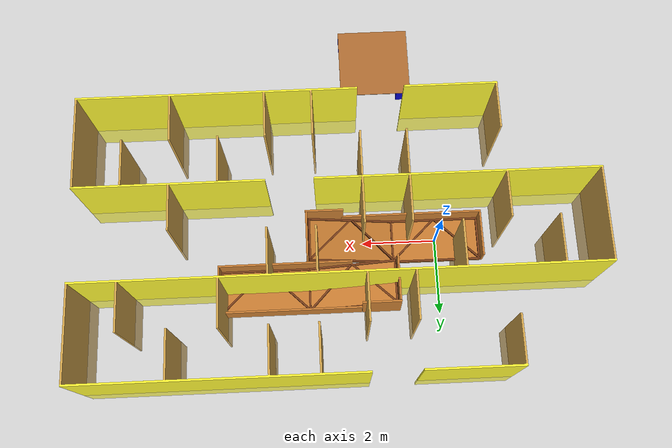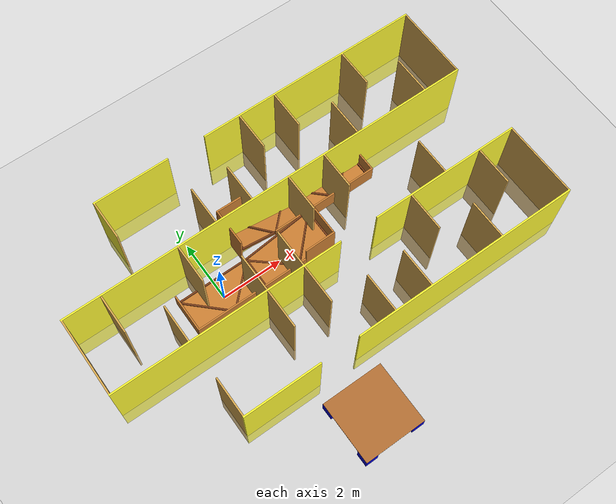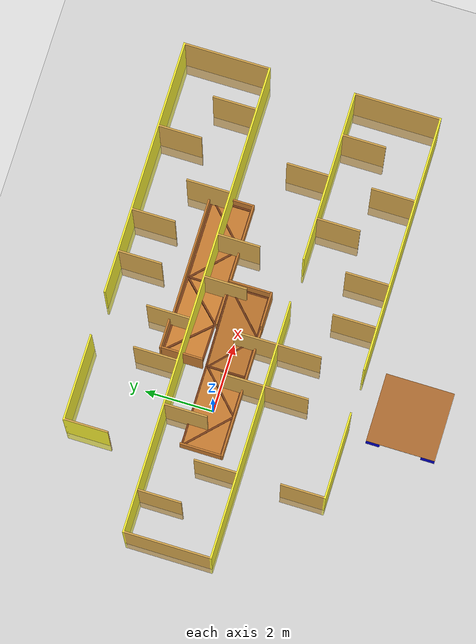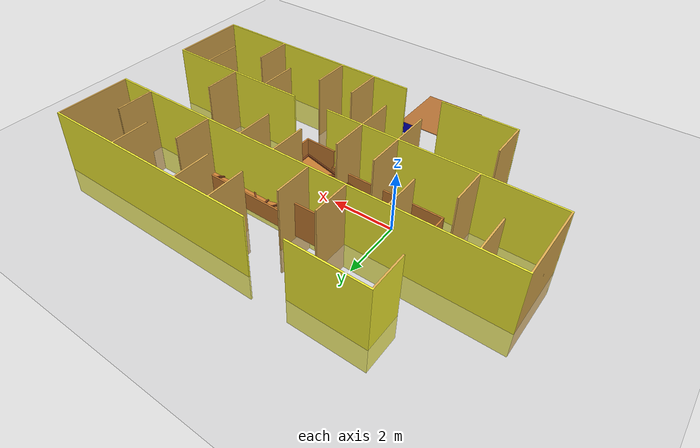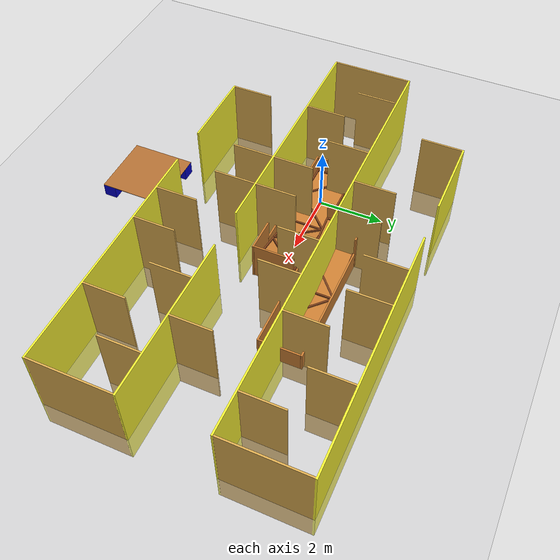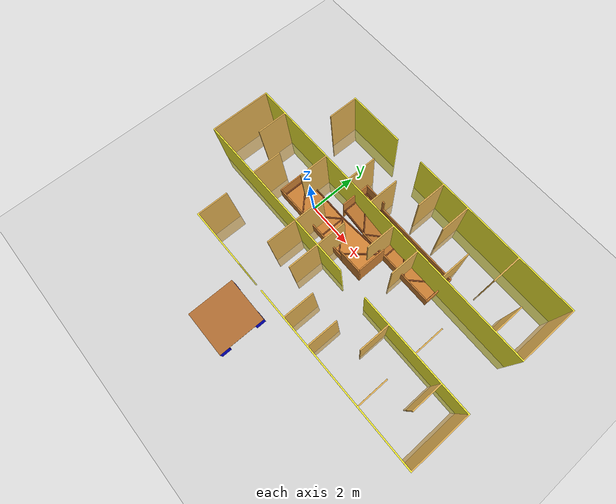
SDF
<sdf version="1.9">
 <world name="ArenaEx">
  <model name="ground_plane">
   <static>true</static>
   <link name="link">
    <collision name="collision">
     <geometry><plane><normal>0 0 1</normal><size>100 100</size></plane></geometry>
    </collision>
    <visual name="visual">
     <geometry><plane><normal>0 0 1</normal><size>100 100</size></plane></geometry>
     <material>
      <ambient>0.8 0.8 0.8 1</ambient>
      <diffuse>0.8 0.8 0.8 1</diffuse>
      <specular>0.8 0.8 0.8 1</specular>
     </material>
    </visual>
    <inertial>
     <mass>1</mass>
     <inertia><ixx>1</ixx><ixy>0</ixy><ixz>0</ixz><iyy>1</iyy><iyz>0</iyz><izz>1</izz></inertia>
    </inertial>
   </link>
  </model>
  <model name="MazeWood">
   <pose>2.5912 0 0.6 0 0 0</pose>
   <static>false</static>
   <link name="MazeWood_link">
    <collision name="MazeWood_collision">
     <geometry><mesh><uri>model://MazeWood.dae</uri><scale>2.5 2.5 2.5</scale></mesh></geometry>
    </collision>
    <visual name="Box2_visual">
     <geometry><mesh><uri>model://MazeWood.dae</uri><scale>2.5 2.5 2.5</scale></mesh></geometry>
    </visual>
   </link>
  </model>
  <model name="K-Rails">
   <link name="Bas1">
    <inertial>
     <inertia><ixx>0.16666</ixx><ixy>0</ixy><ixz>0</ixz><iyy>0.16666</iyy><iyz>0</iyz><izz>0.16666</izz></inertia>
     <mass>1</mass>
    </inertial>
    <collision name="Bas1_collision"><geometry><box><size>2.4 1.2 0.05</size></box></geometry></collision>
    <visual name="Bas1_visual">
     <geometry><box><size>2.4 1.2 0.05</size></box></geometry>
     <material>
      <ambient>0.8 0.5 0.2 1</ambient>
      <diffuse>0.8 0.5 0.2 1</diffuse>
      <specular>0.4 0.2 0.1 1</specular>
     </material>
    </visual>
    <pose>0 0 0.1 0 -0 0</pose>
   </link>
   <link name="Bas2">
    <inertial>
     <inertia><ixx>0.16666</ixx><ixy>0</ixy><ixz>0</ixz><iyy>0.16666</iyy><iyz>0</iyz><izz>0.16666</izz></inertia>
     <mass>1</mass>
    </inertial>
    <collision name="Bas2_collision"><geometry><box><size>2.4 1.2 0.05</size></box></geometry></collision>
    <visual name="Bas2_visual">
     <geometry><box><size>2.4 1.2 0.05</size></box></geometry>
     <material>
      <ambient>0.8 0.5 0.2 1</ambient>
      <diffuse>0.8 0.5 0.2 1</diffuse>
      <specular>0.4 0.2 0.1 1</specular>
     </material>
    </visual>
    <pose>2.3 0 0.39 0 -0.25 0</pose>
   </link>
   <link name="Bas3">
    <inertial>
     <inertia><ixx>0.16666</ixx><ixy>0</ixy><ixz>0</ixz><iyy>0.16666</iyy><iyz>0</iyz><izz>0.16666</izz></inertia>
     <mass>1</mass>
    </inertial>
    <collision name="Bas3_collision"><geometry><box><size>2.4 1.2 0.05</size></box></geometry></collision>
    <visual name="Bas3_visual">
     <geometry><box><size>2.4 1.2 0.05</size></box></geometry>
     <material>
      <ambient>0.8 0.5 0.2 1</ambient>
      <diffuse>0.8 0.5 0.2 1</diffuse>
      <specular>0.4 0.2 0.1 1</specular>
     </material>
    </visual>
    <pose>2.3 1.25 0.39 0 0.25 0</pose>
   </link>
   <link name="Bas4">
    <inertial>
     <inertia><ixx>0.16666</ixx><ixy>0</ixy><ixz>0</ixz><iyy>0.16666</iyy><iyz>0</iyz><izz>0.16666</izz></inertia>
     <mass>1</mass>
    </inertial>
    <collision name="Bas4_collision"><geometry><box><size>2.4 1.2 0.05</size></box></geometry></collision>
    <visual name="Bas4_visual">
     <geometry><box><size>2.4 1.2 0.05</size></box></geometry>
     <material>
      <ambient>0.8 0.5 0.2 1</ambient>
      <diffuse>0.8 0.5 0.2 1</diffuse>
      <specular>0.4 0.2 0.1 1</specular>
     </material>
    </visual>
    <pose>4.64993 1.25 0.09443 0 -0 0</pose>
   </link>
   <link name="Pon1">
    <inertial>
     <inertia><ixx>0.16666</ixx><ixy>0</ixy><ixz>0</ixz><iyy>0.16666</iyy><iyz>0</iyz><izz>0.16666</izz></inertia>
     <mass>1</mass>
    </inertial>
    <collision name="Pon1_collision"><geometry><box><size>0.6 1.2 0.05</size></box></geometry></collision>
    <visual name="Pon1_visual">
     <geometry><box><size>0.6 1.2 0.05</size></box></geometry>
     <material>
      <ambient>0.8 0.5 0.2 1</ambient>
      <diffuse>0.8 0.5 0.2 1</diffuse>
      <specular>0.4 0.2 0.1 1</specular>
     </material>
    </visual>
    <pose>-1.225 0 0.375 0 1.57 0</pose>
   </link>
   <link name="Pon2">
    <inertial>
     <inertia><ixx>0.16666</ixx><ixy>0</ixy><ixz>0</ixz><iyy>0.16666</iyy><iyz>0</iyz><izz>0.16666</izz></inertia>
     <mass>1</mass>
    </inertial>
    <collision name="Pon2_collision"><geometry><box><size>0.6 1.2 0.05</size></box></geometry></collision>
    <visual name="Pon2_visual">
     <geometry><box><size>0.6 1.2 0.05</size></box></geometry>
     <material>
      <ambient>0.8 0.5 0.2 1</ambient>
      <diffuse>0.8 0.5 0.2 1</diffuse>
      <specular>0.4 0.2 0.1 1</specular>
     </material>
    </visual>
    <pose>5.87493 1.25 0.36943 0 1.57 0</pose>
   </link>
   <link name="Pon3">
    <inertial>
     <inertia><ixx>0.16666</ixx><ixy>0</ixy><ixz>0</ixz><iyy>0.16666</iyy><iyz>0</iyz><izz>0.16666</izz></inertia>
     <mass>1</mass>
    </inertial>
    <collision name="Pon3_collision"><geometry><box><size>1.2 1.2 0.05</size></box></geometry></collision>
    <visual name="Pon3_visual">
     <geometry><box><size>1.2 1.2 0.05</size></box></geometry>
     <material>
      <ambient>0.8 0.5 0.2 1</ambient>
      <diffuse>0.8 0.5 0.2 1</diffuse>
      <specular>0.4 0.2 0.1 1</specular>
     </material>
    </visual>
    <pose>3.49176 0 0.694307 0 1.55 0</pose>
   </link>
   <link name="Pon4">
    <inertial>
     <inertia><ixx>0.16666</ixx><ixy>0</ixy><ixz>0</ixz><iyy>0.16666</iyy><iyz>0</iyz><izz>0.16666</izz></inertia>
     <mass>1</mass>
    </inertial>
    <collision name="Pon4_collision"><geometry><box><size>1.2 1.2 0.05</size></box></geometry></collision>
    <visual name="Pon4_visual">
     <geometry><box><size>1.2 1.2 0.05</size></box></geometry>
     <material>
      <ambient>0.8 0.5 0.2 1</ambient>
      <diffuse>0.8 0.5 0.2 1</diffuse>
      <specular>0.4 0.2 0.1 1</specular>
     </material>
    </visual>
    <pose>1.10824 1.25 0.694307 0 -1.55 0</pose>
   </link>
   <link name="Pon5">
    <inertial>
     <inertia><ixx>0.16666</ixx><ixy>0</ixy><ixz>0</ixz><iyy>0.16666</iyy><iyz>0</iyz><izz>0.16666</izz></inertia>
     <mass>1</mass>
    </inertial>
    <collision name="Pon5_collision"><geometry><box><size>1.2 1.02 0.05</size></box></geometry></collision>
    <visual name="Pon5_visual">
     <geometry><box><size>1.2 1.02 0.05</size></box></geometry>
     <material>
      <ambient>0.8 0.5 0.2 1</ambient>
      <diffuse>0.8 0.5 0.2 1</diffuse>
      <specular>0.4 0.2 0.1 1</specular>
     </material>
    </visual>
    <pose>1.58837 1.88 0.674918 1.57 -1.55 0</pose>
   </link>
   <link name="Pon6">
    <inertial>
     <inertia><ixx>0.16666</ixx><ixy>0</ixy><ixz>0</ixz><iyy>0.16666</iyy><iyz>0</iyz><izz>0.16666</izz></inertia>
     <mass>1</mass>
    </inertial>
    <collision name="Pon6_collision"><geometry><box><size>1.2 1.02 0.05</size></box></geometry></collision>
    <visual name="Pon6_visual">
     <geometry><box><size>1.2 1.02 0.05</size></box></geometry>
     <material>
      <ambient>0.8 0.5 0.2 1</ambient>
      <diffuse>0.8 0.5 0.2 1</diffuse>
      <specular>0.4 0.2 0.1 1</specular>
     </material>
    </visual>
    <pose>3.01163 -0.63 0.674918 1.57 1.55 0</pose>
   </link>
   <link name="Par1">
    <inertial>
     <inertia><ixx>0.16666</ixx><ixy>0</ixy><ixz>0</ixz><iyy>0.16666</iyy><iyz>0</iyz><izz>0.16666</izz></inertia>
     <mass>1</mass>
    </inertial>
    <collision name="Par1_collision"><geometry><box><size>0.6 3.8 0.05</size></box></geometry></collision>
    <visual name="Par1_visual">
     <geometry><box><size>0.6 3.8 0.05</size></box></geometry>
     <material>
      <ambient>0.8 0.5 0.2 1</ambient>
      <diffuse>0.8 0.5 0.2 1</diffuse>
      <specular>0.4 0.2 0.1 1</specular>
     </material>
    </visual>
    <pose>0.65 -0.626 0.375 1.57 1.57 0</pose>
   </link>
   <link name="Par2">
    <inertial>
     <inertia><ixx>0.16666</ixx><ixy>0</ixy><ixz>0</ixz><iyy>0.16666</iyy><iyz>0</iyz><izz>0.16666</izz></inertia>
     <mass>1</mass>
    </inertial>
    <collision name="Par2_collision"><geometry><box><size>0.6 3.8 0.05</size></box></geometry></collision>
    <visual name="Par2_visual">
     <geometry><box><size>0.6 3.8 0.05</size></box></geometry>
     <material>
      <ambient>0.8 0.5 0.2 1</ambient>
      <diffuse>0.8 0.5 0.2 1</diffuse>
      <specular>0.4 0.2 0.1 1</specular>
     </material>
    </visual>
    <pose>3.99993 1.876 0.36943 1.57 1.57 0</pose>
   </link>
   <link name="Par3">
    <inertial>
     <inertia><ixx>0.16666</ixx><ixy>0</ixy><ixz>0</ixz><iyy>0.16666</iyy><iyz>0</iyz><izz>0.16666</izz></inertia>
     <mass>1</mass>
    </inertial>
    <collision name="Par3_collision"><geometry><box><size>0.6 3.6 0.05</size></box></geometry></collision>
    <visual name="Par3_visual">
     <geometry><box><size>0.6 3.6 0.05</size></box></geometry>
     <material>
      <ambient>0.8 0.5 0.2 1</ambient>
      <diffuse>0.8 0.5 0.2 1</diffuse>
      <specular>0.4 0.2 0.1 1</specular>
     </material>
    </visual>
    <pose>4.09993 0.624 0.36943 1.57 1.57 0</pose>
   </link>
   <link name="BarA1">
    <inertial>
     <inertia><ixx>0.16666</ixx><ixy>0</ixy><ixz>0</ixz><iyy>0.16666</iyy><iyz>0</iyz><izz>0.16666</izz></inertia>
     <mass>1</mass>
    </inertial>
    <collision name="BarA1_collision"><geometry><box><size>2.4 0.05 0.05</size></box></geometry></collision>
    <visual name="BarA1_visual">
     <geometry><box><size>2.4 0.05 0.05</size></box></geometry>
     <material>
      <ambient>0.5 0.25 0.1 1</ambient>
      <diffuse>0.5 0.25 0.1 1</diffuse>
      <specular>0.3 0.15 0.05 1</specular>
     </material>
    </visual>
    <pose>0 -0.57 0.15 0 -0 0</pose>
   </link>
   <link name="BarA2">
    <inertial>
     <inertia><ixx>0.16666</ixx><ixy>0</ixy><ixz>0</ixz><iyy>0.16666</iyy><iyz>0</iyz><izz>0.16666</izz></inertia>
     <mass>1</mass>
    </inertial>
    <collision name="BarA2_collision"><geometry><box><size>2.4 0.05 0.05</size></box></geometry></collision>
    <visual name="BarA2_visual">
     <geometry><box><size>2.4 0.05 0.05</size></box></geometry>
     <material>
      <ambient>0.5 0.25 0.1 1</ambient>
      <diffuse>0.5 0.25 0.1 1</diffuse>
      <specular>0.3 0.15 0.05 1</specular>
     </material>
    </visual>
    <pose>0 0.57 0.15 0 -0 0</pose>
   </link>
   <link name="BarA3">
    <inertial>
     <inertia><ixx>0.16666</ixx><ixy>0</ixy><ixz>0</ixz><iyy>0.16666</iyy><iyz>0</iyz><izz>0.16666</izz></inertia>
     <mass>1</mass>
    </inertial>
    <collision name="BarA3_collision"><geometry><box><size>0.05 1.1 0.05</size></box></geometry></collision>
    <visual name="BarA3_visual">
     <geometry><box><size>0.05 1.1 0.05</size></box></geometry>
     <material>
      <ambient>0.5 0.25 0.1 1</ambient>
      <diffuse>0.5 0.25 0.1 1</diffuse>
      <specular>0.3 0.15 0.05 1</specular>
     </material>
    </visual>
    <pose>-1.175 0 0.15 0 -0 0</pose>
   </link>
   <link name="BarA4">
    <inertial>
     <inertia><ixx>0.16666</ixx><ixy>0</ixy><ixz>0</ixz><iyy>0.16666</iyy><iyz>0</iyz><izz>0.16666</izz></inertia>
     <mass>1</mass>
    </inertial>
    <collision name="BarA4_collision"><geometry><box><size>0.05 1.1 0.05</size></box></geometry></collision>
    <visual name="BarA4_visual">
     <geometry><box><size>0.05 1.1 0.05</size></box></geometry>
     <material>
      <ambient>0.5 0.25 0.1 1</ambient>
      <diffuse>0.5 0.25 0.1 1</diffuse>
      <specular>0.3 0.15 0.05 1</specular>
     </material>
    </visual>
    <pose>1.175 0 0.15 0 -0 0</pose>
   </link>
   <link name="BarA5">
    <inertial>
     <inertia><ixx>0.16666</ixx><ixy>0</ixy><ixz>0</ixz><iyy>0.16666</iyy><iyz>0</iyz><izz>0.16666</izz></inertia>
     <mass>1</mass>
    </inertial>
    <collision name="BarA5_collision"><geometry><box><size>0.05 1.6 0.05</size></box></geometry></collision>
    <visual name="BarA5_visual">
     <geometry><box><size>0.05 1.6 0.05</size></box></geometry>
     <material>
      <ambient>0.5 0.25 0.1 1</ambient>
      <diffuse>0.5 0.25 0.1 1</diffuse>
      <specular>0.3 0.15 0.05 1</specular>
     </material>
    </visual>
    <pose>-0.6 -0.01 0.15 0 -0 0.8</pose>
   </link>
   <link name="BarA6">
    <inertial>
     <inertia><ixx>0.16666</ixx><ixy>0</ixy><ixz>0</ixz><iyy>0.16666</iyy><iyz>0</iyz><izz>0.16666</izz></inertia>
     <mass>1</mass>
    </inertial>
    <collision name="BarA6_collision"><geometry><box><size>0.05 1.6 0.05</size></box></geometry></collision>
    <visual name="BarA6_visual">
     <geometry><box><size>0.05 1.6 0.05</size></box></geometry>
     <material>
      <ambient>0.5 0.25 0.1 1</ambient>
      <diffuse>0.5 0.25 0.1 1</diffuse>
      <specular>0.3 0.15 0.05 1</specular>
     </material>
    </visual>
    <pose>0.6 -0.01 0.15 0 0 -0.8</pose>
   </link>
   <link name="BarA7">
    <inertial>
     <inertia><ixx>0.16666</ixx><ixy>0</ixy><ixz>0</ixz><iyy>0.16666</iyy><iyz>0</iyz><izz>0.16666</izz></inertia>
     <mass>1</mass>
    </inertial>
    <collision name="BarA7_collision"><geometry><box><size>2.4 0.05 0.05</size></box></geometry></collision>
    <visual name="BarA7_visual">
     <geometry><box><size>2.4 0.05 0.05</size></box></geometry>
     <material>
      <ambient>0.5 0.25 0.1 1</ambient>
      <diffuse>0.5 0.25 0.1 1</diffuse>
      <specular>0.3 0.15 0.05 1</specular>
     </material>
    </visual>
    <pose>2.28763 -0.57 0.438446 0 -0.25 0</pose>
   </link>
   <link name="BarA8">
    <inertial>
     <inertia><ixx>0.16666</ixx><ixy>0</ixy><ixz>0</ixz><iyy>0.16666</iyy><iyz>0</iyz><izz>0.16666</izz></inertia>
     <mass>1</mass>
    </inertial>
    <collision name="BarA8_collision"><geometry><box><size>2.4 0.05 0.05</size></box></geometry></collision>
    <visual name="BarA8_visual">
     <geometry><box><size>2.4 0.05 0.05</size></box></geometry>
     <material>
      <ambient>0.5 0.25 0.1 1</ambient>
      <diffuse>0.5 0.25 0.1 1</diffuse>
      <specular>0.3 0.15 0.05 1</specular>
     </material>
    </visual>
    <pose>2.28763 0.57 0.438446 0 -0.25 0</pose>
   </link>
   <link name="BarA9">
    <inertial>
     <inertia><ixx>0.16666</ixx><ixy>0</ixy><ixz>0</ixz><iyy>0.16666</iyy><iyz>0</iyz><izz>0.16666</izz></inertia>
     <mass>1</mass>
    </inertial>
    <collision name="BarA9_collision"><geometry><box><size>0.05 1.1 0.05</size></box></geometry></collision>
    <visual name="BarA9_visual">
     <geometry><box><size>0.05 1.1 0.05</size></box></geometry>
     <material>
      <ambient>0.5 0.25 0.1 1</ambient>
      <diffuse>0.5 0.25 0.1 1</diffuse>
      <specular>0.3 0.15 0.05 1</specular>
     </material>
    </visual>
    <pose>3.4261 0 0.729145 0 -0.25 0</pose>
   </link>
   <link name="BarA10">
    <inertial>
     <inertia><ixx>0.16666</ixx><ixy>0</ixy><ixz>0</ixz><iyy>0.16666</iyy><iyz>0</iyz><izz>0.16666</izz></inertia>
     <mass>1</mass>
    </inertial>
    <collision name="BarA10_collision"><geometry><box><size>0.05 1.6 0.05</size></box></geometry></collision>
    <visual name="BarA10_visual">
     <geometry><box><size>0.05 1.6 0.05</size></box></geometry>
     <material>
      <ambient>0.5 0.25 0.1 1</ambient>
      <diffuse>0.5 0.25 0.1 1</diffuse>
      <specular>0.3 0.15 0.05 1</specular>
     </material>
    </visual>
    <pose>1.70628 -0.01 0.290003 -0.181163 -0.173233 0.815774</pose>
   </link>
   <link name="BarA11">
    <inertial>
     <inertia><ixx>0.16666</ixx><ixy>0</ixy><ixz>0</ixz><iyy>0.16666</iyy><iyz>0</iyz><izz>0.16666</izz></inertia>
     <mass>1</mass>
    </inertial>
    <collision name="BarA11_collision"><geometry><box><size>0.05 1.6 0.05</size></box></geometry></collision>
    <visual name="BarA11_visual">
     <geometry><box><size>0.05 1.6 0.05</size></box></geometry>
     <material>
      <ambient>0.5 0.25 0.1 1</ambient>
      <diffuse>0.5 0.25 0.1 1</diffuse>
      <specular>0.3 0.15 0.05 1</specular>
     </material>
    </visual>
    <pose>2.86898 -0.01 0.586888 0.181163 -0.173233 -0.815774</pose>
   </link>
   <link name="BarA12">
    <inertial>
     <inertia><ixx>0.16666</ixx><ixy>0</ixy><ixz>0</ixz><iyy>0.16666</iyy><iyz>0</iyz><izz>0.16666</izz></inertia>
     <mass>1</mass>
    </inertial>
    <collision name="BarA12_collision"><geometry><box><size>2.4 0.05 0.05</size></box></geometry></collision>
    <visual name="BarA12_visual">
     <geometry><box><size>2.4 0.05 0.05</size></box></geometry>
     <material>
      <ambient>0.5 0.25 0.1 1</ambient>
      <diffuse>0.5 0.25 0.1 1</diffuse>
      <specular>0.3 0.15 0.05 1</specular>
     </material>
    </visual>
    <pose>2.31237 0.68 0.438446 0 0.25 0</pose>
   </link>
   <link name="BarA13">
    <inertial>
     <inertia><ixx>0.16666</ixx><ixy>0</ixy><ixz>0</ixz><iyy>0.16666</iyy><iyz>0</iyz><izz>0.16666</izz></inertia>
     <mass>1</mass>
    </inertial>
    <collision name="BarA13_collision"><geometry><box><size>2.4 0.05 0.05</size></box></geometry></collision>
    <visual name="BarA13_visual">
     <geometry><box><size>2.4 0.05 0.05</size></box></geometry>
     <material>
      <ambient>0.5 0.25 0.1 1</ambient>
      <diffuse>0.5 0.25 0.1 1</diffuse>
      <specular>0.3 0.15 0.05 1</specular>
     </material>
    </visual>
    <pose>2.31237 1.82 0.438446 0 0.25 0</pose>
   </link>
   <link name="BarA14">
    <inertial>
     <inertia><ixx>0.16666</ixx><ixy>0</ixy><ixz>0</ixz><iyy>0.16666</iyy><iyz>0</iyz><izz>0.16666</izz></inertia>
     <mass>1</mass>
    </inertial>
    <collision name="BarA14_collision"><geometry><box><size>0.05 1.1 0.05</size></box></geometry></collision>
    <visual name="BarA14_visual">
     <geometry><box><size>0.05 1.1 0.05</size></box></geometry>
     <material>
      <ambient>0.5 0.25 0.1 1</ambient>
      <diffuse>0.5 0.25 0.1 1</diffuse>
      <specular>0.3 0.15 0.05 1</specular>
     </material>
    </visual>
    <pose>1.1739 1.25 0.729145 0 0.25 0</pose>
   </link>
   <link name="BarA15">
    <inertial>
     <inertia><ixx>0.16666</ixx><ixy>0</ixy><ixz>0</ixz><iyy>0.16666</iyy><iyz>0</iyz><izz>0.16666</izz></inertia>
     <mass>1</mass>
    </inertial>
    <collision name="BarA15_collision"><geometry><box><size>0.05 1.6 0.05</size></box></geometry></collision>
    <visual name="BarA15_visual">
     <geometry><box><size>0.05 1.6 0.05</size></box></geometry>
     <material>
      <ambient>0.5 0.25 0.1 1</ambient>
      <diffuse>0.5 0.25 0.1 1</diffuse>
      <specular>0.3 0.15 0.05 1</specular>
     </material>
    </visual>
    <pose>1.73102 1.24 0.586888 0.181163 0.173233 0.815774</pose>
   </link>
   <link name="BarA16">
    <inertial>
     <inertia><ixx>0.16666</ixx><ixy>0</ixy><ixz>0</ixz><iyy>0.16666</iyy><iyz>0</iyz><izz>0.16666</izz></inertia>
     <mass>1</mass>
    </inertial>
    <collision name="BarA16_collision"><geometry><box><size>0.05 1.6 0.05</size></box></geometry></collision>
    <visual name="BarA16_visual">
     <geometry><box><size>0.05 1.6 0.05</size></box></geometry>
     <material>
      <ambient>0.5 0.25 0.1 1</ambient>
      <diffuse>0.5 0.25 0.1 1</diffuse>
      <specular>0.3 0.15 0.05 1</specular>
     </material>
    </visual>
    <pose>2.89372 1.24 0.290003 -0.181163 0.173233 -0.815774</pose>
   </link>
   <link name="BarA17">
    <inertial>
     <inertia><ixx>0.16666</ixx><ixy>0</ixy><ixz>0</ixz><iyy>0.16666</iyy><iyz>0</iyz><izz>0.16666</izz></inertia>
     <mass>1</mass>
    </inertial>
    <collision name="BarA17_collision"><geometry><box><size>2.4 0.05 0.05</size></box></geometry></collision>
    <visual name="BarA17_visual">
     <geometry><box><size>2.4 0.05 0.05</size></box></geometry>
     <material>
      <ambient>0.5 0.25 0.1 1</ambient>
      <diffuse>0.5 0.25 0.1 1</diffuse>
      <specular>0.3 0.15 0.05 1</specular>
     </material>
    </visual>
    <pose>4.64993 0.68 0.14443 0 -0 0</pose>
   </link>
   <link name="BarA18">
    <inertial>
     <inertia><ixx>0.16666</ixx><ixy>0</ixy><ixz>0</ixz><iyy>0.16666</iyy><iyz>0</iyz><izz>0.16666</izz></inertia>
     <mass>1</mass>
    </inertial>
    <collision name="BarA18_collision"><geometry><box><size>2.4 0.05 0.05</size></box></geometry></collision>
    <visual name="BarA18_visual">
     <geometry><box><size>2.4 0.05 0.05</size></box></geometry>
     <material>
      <ambient>0.5 0.25 0.1 1</ambient>
      <diffuse>0.5 0.25 0.1 1</diffuse>
      <specular>0.3 0.15 0.05 1</specular>
     </material>
    </visual>
    <pose>4.64993 1.82 0.14443 0 -0 0</pose>
   </link>
   <link name="BarA19">
    <inertial>
     <inertia><ixx>0.16666</ixx><ixy>0</ixy><ixz>0</ixz><iyy>0.16666</iyy><iyz>0</iyz><izz>0.16666</izz></inertia>
     <mass>1</mass>
    </inertial>
    <collision name="BarA19_collision"><geometry><box><size>0.05 1.1 0.05</size></box></geometry></collision>
    <visual name="BarA19_visual">
     <geometry><box><size>0.05 1.1 0.05</size></box></geometry>
     <material>
      <ambient>0.5 0.25 0.1 1</ambient>
      <diffuse>0.5 0.25 0.1 1</diffuse>
      <specular>0.3 0.15 0.05 1</specular>
     </material>
    </visual>
    <pose>5.82493 1.25 0.14443 0 -0 0</pose>
   </link>
   <link name="BarA20">
    <inertial>
     <inertia><ixx>0.16666</ixx><ixy>0</ixy><ixz>0</ixz><iyy>0.16666</iyy><iyz>0</iyz><izz>0.16666</izz></inertia>
     <mass>1</mass>
    </inertial>
    <collision name="BarA20_collision"><geometry><box><size>0.05 1.1 0.05</size></box></geometry></collision>
    <visual name="BarA20_visual">
     <geometry><box><size>0.05 1.1 0.05</size></box></geometry>
     <material>
      <ambient>0.5 0.25 0.1 1</ambient>
      <diffuse>0.5 0.25 0.1 1</diffuse>
      <specular>0.3 0.15 0.05 1</specular>
     </material>
    </visual>
    <pose>3.47493 1.25 0.14443 0 -0 0</pose>
   </link>
   <link name="BarA21">
    <inertial>
     <inertia><ixx>0.16666</ixx><ixy>0</ixy><ixz>0</ixz><iyy>0.16666</iyy><iyz>0</iyz><izz>0.16666</izz></inertia>
     <mass>1</mass>
    </inertial>
    <collision name="BarA21_collision"><geometry><box><size>0.05 1.6 0.05</size></box></geometry></collision>
    <visual name="BarA21_visual">
     <geometry><box><size>0.05 1.6 0.05</size></box></geometry>
     <material>
      <ambient>0.5 0.25 0.1 1</ambient>
      <diffuse>0.5 0.25 0.1 1</diffuse>
      <specular>0.3 0.15 0.05 1</specular>
     </material>
    </visual>
    <pose>4.04993 1.24 0.14443 -0 0 0.8</pose>
   </link>
   <link name="BarA22">
    <inertial>
     <inertia><ixx>0.16666</ixx><ixy>0</ixy><ixz>0</ixz><iyy>0.16666</iyy><iyz>0</iyz><izz>0.16666</izz></inertia>
     <mass>1</mass>
    </inertial>
    <collision name="BarA22_collision"><geometry><box><size>0.05 1.6 0.05</size></box></geometry></collision>
    <visual name="BarA22_visual">
     <geometry><box><size>0.05 1.6 0.05</size></box></geometry>
     <material>
      <ambient>0.5 0.25 0.1 1</ambient>
      <diffuse>0.5 0.25 0.1 1</diffuse>
      <specular>0.3 0.15 0.05 1</specular>
     </material>
    </visual>
    <pose>5.24993 1.24 0.14443 0 0 -0.8</pose>
   </link>
   <static>true</static>
  </model>
  <model name="Box">
   <pose>1.3959 -5.3377 -4.5921 0 0 0</pose>
   <static>false</static>
   <link name="Box_link">
    <collision name="Box_collision">
     <geometry><mesh><uri>model://Box.dae</uri><scale>1 1 1</scale></mesh></geometry>
    </collision>
    <visual name="Box_visual">
     <geometry><mesh><uri>model://Box.dae</uri><scale>1 1 1</scale></mesh></geometry>
    </visual>
   </link>
  </model>
 </world>
</sdf>
